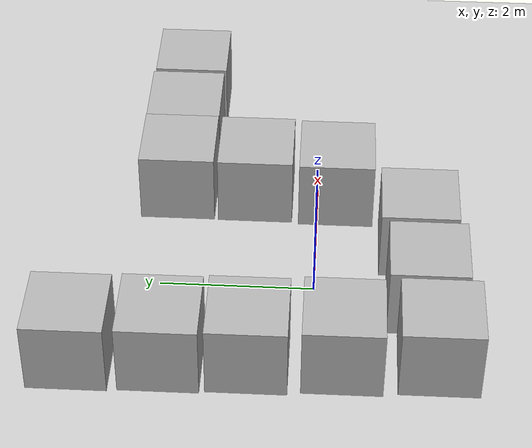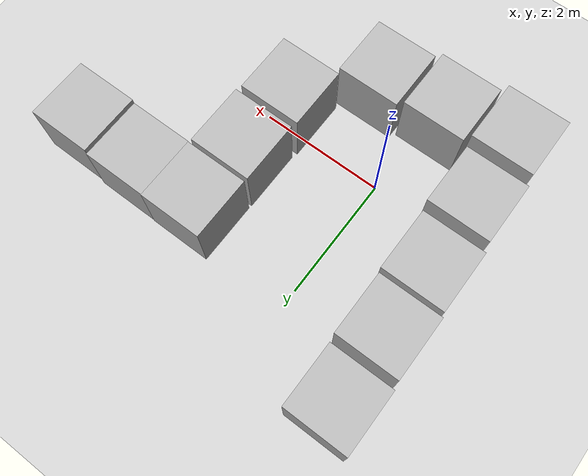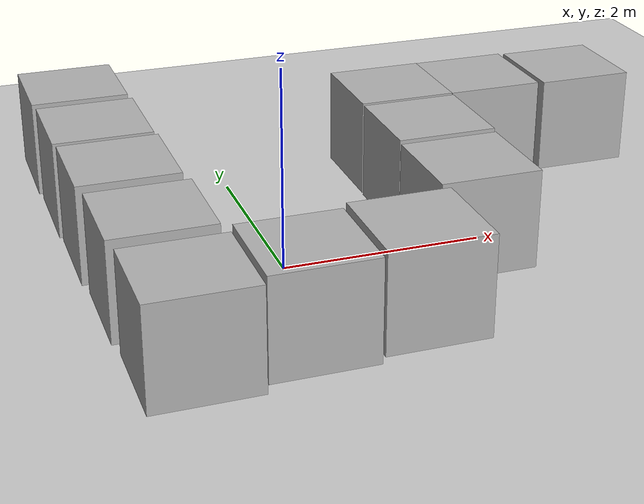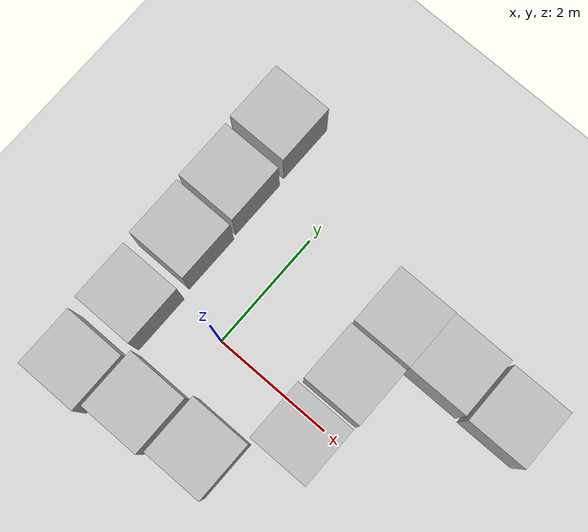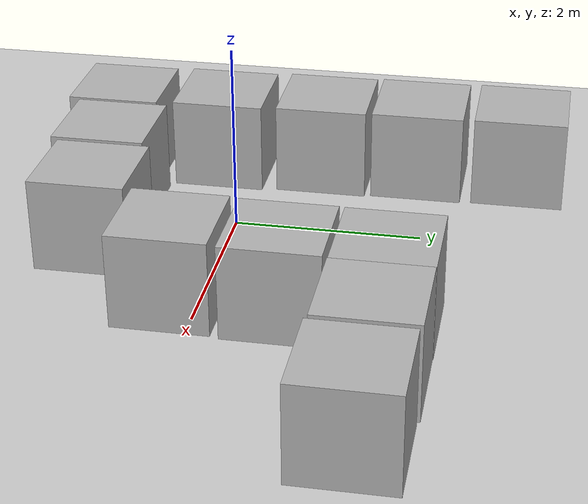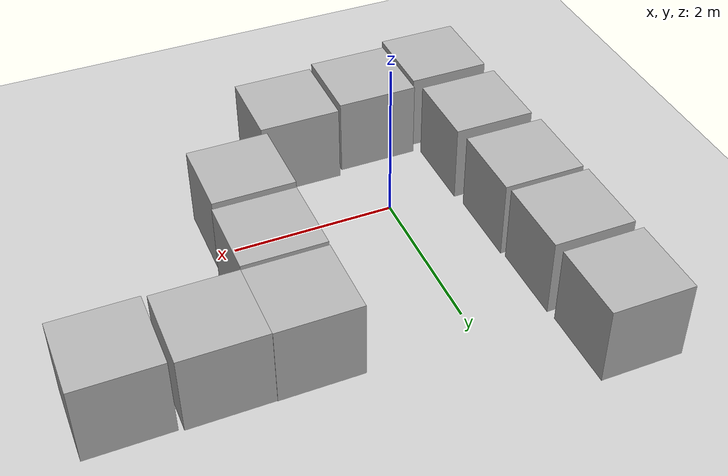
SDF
<sdf version='1.10'>
  <world name='empty'>
    <physics name='1ms' type='ignored'>
      <max_step_size>0.001</max_step_size>
      <real_time_factor>1</real_time_factor>
      <real_time_update_rate>1000</real_time_update_rate>
    </physics>
    <plugin name='gz::sim::systems::Physics' filename='gz-sim-physics-system'/>
    <plugin name='gz::sim::systems::UserCommands' filename='gz-sim-user-commands-system'/>
    <plugin name='gz::sim::systems::SceneBroadcaster' filename='gz-sim-scene-broadcaster-system'/>
    <plugin name='gz::sim::systems::Contact' filename='gz-sim-contact-system'/>
    <gravity>0 0 -9.8000000000000007</gravity>
    <magnetic_field>5.5644999999999998e-06 2.2875799999999999e-05 -4.2388400000000002e-05</magnetic_field>
    <atmosphere type='adiabatic'/>
    <scene>
      <ambient>0.400000006 0.400000006 0.400000006 1</ambient>
      <background>0.699999988 0.699999988 0.699999988 1</background>
      <shadows>true</shadows>
    </scene>
    <model name='ground_plane'>
      <static>true</static>
      <link name='link'>
        <collision name='collision'>
          <geometry>
            <plane>
              <normal>0 0 1</normal>
              <size>100 100</size>
            </plane>
          </geometry>
          <surface>
            <friction>
              <ode/>
            </friction>
            <bounce/>
            <contact/>
          </surface>
        </collision>
        <visual name='visual'>
          <geometry>
            <plane>
              <normal>0 0 1</normal>
              <size>100 100</size>
            </plane>
          </geometry>
          <material>
            <ambient>0.800000012 0.800000012 0.800000012 1</ambient>
            <diffuse>0.800000012 0.800000012 0.800000012 1</diffuse>
            <specular>0.800000012 0.800000012 0.800000012 1</specular>
          </material>
        </visual>
        <pose>0 0 0 0 0 0</pose>
        <inertial>
          <pose>0 0 0 0 0 0</pose>
          <mass>1</mass>
          <inertia>
            <ixx>1</ixx>
            <ixy>0</ixy>
            <ixz>0</ixz>
            <iyy>1</iyy>
            <iyz>0</iyz>
            <izz>1</izz>
          </inertia>
        </inertial>
        <enable_wind>false</enable_wind>
      </link>
      <pose>0 0 0 0 0 0</pose>
      <self_collide>false</self_collide>
    </model>

    <model name='box'>
      <pose>-1.4199172991033273 2.9624417713938458 0.49999999990199806 6.2287739151293738e-22 9.3279666454713669e-22 -3.6315533669320137e-22</pose>
      <link name='box_link'>
        <inertial>
          <inertia>
            <ixx>0.16666</ixx>
            <ixy>0</ixy>
            <ixz>0</ixz>
            <iyy>0.16666</iyy>
            <iyz>0</iyz>
            <izz>0.16666</izz>
          </inertia>
          <mass>1</mass>
          <pose>0 0 0 0 0 0</pose>
        </inertial>
        <collision name='box_collision'>
          <geometry>
            <box>
              <size>1 1 1</size>
            </box>
          </geometry>
          <surface>
            <friction>
              <ode/>
            </friction>
            <bounce/>
            <contact/>
          </surface>
        </collision>
        <visual name='box_visual'>
          <geometry>
            <box>
              <size>1 1 1</size>
            </box>
          </geometry>
          <material>
            <ambient>0.300000012 0.300000012 0.300000012 1</ambient>
            <diffuse>0.699999988 0.699999988 0.699999988 1</diffuse>
            <specular>1 1 1 1</specular>
          </material>
        </visual>
        <pose>0 0 0 0 0 0</pose>
        <enable_wind>false</enable_wind>
      </link>
      <static>false</static>
      <self_collide>false</self_collide>
    </model>
    <model name='box_0'>
      <pose>-1.3954971699104231 1.8411759138308825 0.49999999990199806 3.0311822190606552e-21 3.0334240186237451e-21 3.1588773509749865e-22</pose>
      <link name='box_link'>
        <inertial>
          <inertia>
            <ixx>0.16666</ixx>
            <ixy>0</ixy>
            <ixz>0</ixz>
            <iyy>0.16666</iyy>
            <iyz>0</iyz>
            <izz>0.16666</izz>
          </inertia>
          <mass>1</mass>
          <pose>0 0 0 0 0 0</pose>
        </inertial>
        <collision name='box_collision'>
          <geometry>
            <box>
              <size>1 1 1</size>
            </box>
          </geometry>
          <surface>
            <friction>
              <ode/>
            </friction>
            <bounce/>
            <contact/>
          </surface>
        </collision>
        <visual name='box_visual'>
          <geometry>
            <box>
              <size>1 1 1</size>
            </box>
          </geometry>
          <material>
            <ambient>0.300000012 0.300000012 0.300000012 1</ambient>
            <diffuse>0.699999988 0.699999988 0.699999988 1</diffuse>
            <specular>1 1 1 1</specular>
          </material>
        </visual>
        <pose>0 0 0 0 0 0</pose>
        <enable_wind>false</enable_wind>
      </link>
      <static>false</static>
      <self_collide>false</self_collide>
    </model>
    <model name='box_1'>
      <pose>-1.3694394904535407 0.77414551856460112 0.49999999990199806 6.2287739151293738e-22 9.3279666454713669e-22 -3.6315533669320137e-22</pose>
      <link name='box_link'>
        <inertial>
          <inertia>
            <ixx>0.16666</ixx>
            <ixy>0</ixy>
            <ixz>0</ixz>
            <iyy>0.16666</iyy>
            <iyz>0</iyz>
            <izz>0.16666</izz>
          </inertia>
          <mass>1</mass>
          <pose>0 0 0 0 0 0</pose>
        </inertial>
        <collision name='box_collision'>
          <geometry>
            <box>
              <size>1 1 1</size>
            </box>
          </geometry>
          <surface>
            <friction>
              <ode/>
            </friction>
            <bounce/>
            <contact/>
          </surface>
        </collision>
        <visual name='box_visual'>
          <geometry>
            <box>
              <size>1 1 1</size>
            </box>
          </geometry>
          <material>
            <ambient>0.300000012 0.300000012 0.300000012 1</ambient>
            <diffuse>0.699999988 0.699999988 0.699999988 1</diffuse>
            <specular>1 1 1 1</specular>
          </material>
        </visual>
        <pose>0 0 0 0 0 0</pose>
        <enable_wind>false</enable_wind>
      </link>
      <static>false</static>
      <self_collide>false</self_collide>
    </model>
    <model name='box_2'>
      <pose>-1.327746954532339 -0.38645944554479117 0.49999999990199806 6.2287739151293738e-22 9.3279666454713669e-22 -3.6315533669320137e-22</pose>
      <link name='box_link'>
        <inertial>
          <inertia>
            <ixx>0.16666</ixx>
            <ixy>0</ixy>
            <ixz>0</ixz>
            <iyy>0.16666</iyy>
            <iyz>0</iyz>
            <izz>0.16666</izz>
          </inertia>
          <mass>1</mass>
          <pose>0 0 0 0 0 0</pose>
        </inertial>
        <collision name='box_collision'>
          <geometry>
            <box>
              <size>1 1 1</size>
            </box>
          </geometry>
          <surface>
            <friction>
              <ode/>
            </friction>
            <bounce/>
            <contact/>
          </surface>
        </collision>
        <visual name='box_visual'>
          <geometry>
            <box>
              <size>1 1 1</size>
            </box>
          </geometry>
          <material>
            <ambient>0.300000012 0.300000012 0.300000012 1</ambient>
            <diffuse>0.699999988 0.699999988 0.699999988 1</diffuse>
            <specular>1 1 1 1</specular>
          </material>
        </visual>
        <pose>0 0 0 0 0 0</pose>
        <enable_wind>false</enable_wind>
      </link>
      <static>false</static>
      <self_collide>false</self_collide>
    </model>
    <model name='box_3'>
      <pose>-1.2863466139972171 -1.5664504239690018 0.49999999990199806 6.2287739151293738e-22 9.3279666454713669e-22 -3.6315533669320137e-22</pose>
      <link name='box_link'>
        <inertial>
          <inertia>
            <ixx>0.16666</ixx>
            <ixy>0</ixy>
            <ixz>0</ixz>
            <iyy>0.16666</iyy>
            <iyz>0</iyz>
            <izz>0.16666</izz>
          </inertia>
          <mass>1</mass>
          <pose>0 0 0 0 0 0</pose>
        </inertial>
        <collision name='box_collision'>
          <geometry>
            <box>
              <size>1 1 1</size>
            </box>
          </geometry>
          <surface>
            <friction>
              <ode/>
            </friction>
            <bounce/>
            <contact/>
          </surface>
        </collision>
        <visual name='box_visual'>
          <geometry>
            <box>
              <size>1 1 1</size>
            </box>
          </geometry>
          <material>
            <ambient>0.300000012 0.300000012 0.300000012 1</ambient>
            <diffuse>0.699999988 0.699999988 0.699999988 1</diffuse>
            <specular>1 1 1 1</specular>
          </material>
        </visual>
        <pose>0 0 0 0 0 0</pose>
        <enable_wind>false</enable_wind>
      </link>
      <static>false</static>
      <self_collide>false</self_collide>
    </model>
    <model name='box_4'>
      <pose>-0.23928754447726752 -1.4329954207501654 0.49999999990199806 6.2287739151293738e-22 9.3279666454713669e-22 -3.6315533669320137e-22</pose>
      <link name='box_link'>
        <inertial>
          <inertia>
            <ixx>0.16666</ixx>
            <ixy>0</ixy>
            <ixz>0</ixz>
            <iyy>0.16666</iyy>
            <iyz>0</iyz>
            <izz>0.16666</izz>
          </inertia>
          <mass>1</mass>
          <pose>0 0 0 0 0 0</pose>
        </inertial>
        <collision name='box_collision'>
          <geometry>
            <box>
              <size>1 1 1</size>
            </box>
          </geometry>
          <surface>
            <friction>
              <ode/>
            </friction>
            <bounce/>
            <contact/>
          </surface>
        </collision>
        <visual name='box_visual'>
          <geometry>
            <box>
              <size>1 1 1</size>
            </box>
          </geometry>
          <material>
            <ambient>0.300000012 0.300000012 0.300000012 1</ambient>
            <diffuse>0.699999988 0.699999988 0.699999988 1</diffuse>
            <specular>1 1 1 1</specular>
          </material>
        </visual>
        <pose>0 0 0 0 0 0</pose>
        <enable_wind>false</enable_wind>
      </link>
      <static>false</static>
      <self_collide>false</self_collide>
    </model>
    <model name='box_5'>
      <pose>0.82204059738681146 -1.3354860004371107 0.49999999990199806 6.2287739151293738e-22 9.3279666454713669e-22 -3.6315533669320137e-22</pose>
      <link name='box_link'>
        <inertial>
          <inertia>
            <ixx>0.16666</ixx>
            <ixy>0</ixy>
            <ixz>0</ixz>
            <iyy>0.16666</iyy>
            <iyz>0</iyz>
            <izz>0.16666</izz>
          </inertia>
          <mass>1</mass>
          <pose>0 0 0 0 0 0</pose>
        </inertial>
        <collision name='box_collision'>
          <geometry>
            <box>
              <size>1 1 1</size>
            </box>
          </geometry>
          <surface>
            <friction>
              <ode/>
            </friction>
            <bounce/>
            <contact/>
          </surface>
        </collision>
        <visual name='box_visual'>
          <geometry>
            <box>
              <size>1 1 1</size>
            </box>
          </geometry>
          <material>
            <ambient>0.300000012 0.300000012 0.300000012 1</ambient>
            <diffuse>0.699999988 0.699999988 0.699999988 1</diffuse>
            <specular>1 1 1 1</specular>
          </material>
        </visual>
        <pose>0 0 0 0 0 0</pose>
        <enable_wind>false</enable_wind>
      </link>
      <static>false</static>
      <self_collide>false</self_collide>
    </model>
    <model name='box_6'>
      <pose>1.7734679776881273 -0.25239669794122199 0.49999999990199806 -1.9249943472110903e-21 -8.8168099312135399e-23 5.9539359531013704e-24</pose>
      <link name='box_link'>
        <inertial>
          <inertia>
            <ixx>0.16666</ixx>
            <ixy>0</ixy>
            <ixz>0</ixz>
            <iyy>0.16666</iyy>
            <iyz>0</iyz>
            <izz>0.16666</izz>
          </inertia>
          <mass>1</mass>
          <pose>0 0 0 0 0 0</pose>
        </inertial>
        <collision name='box_collision'>
          <geometry>
            <box>
              <size>1 1 1</size>
            </box>
          </geometry>
          <surface>
            <friction>
              <ode/>
            </friction>
            <bounce/>
            <contact/>
          </surface>
        </collision>
        <visual name='box_visual'>
          <geometry>
            <box>
              <size>1 1 1</size>
            </box>
          </geometry>
          <material>
            <ambient>0.300000012 0.300000012 0.300000012 1</ambient>
            <diffuse>0.699999988 0.699999988 0.699999988 1</diffuse>
            <specular>1 1 1 1</specular>
          </material>
        </visual>
        <pose>0 0 0 0 0 0</pose>
        <enable_wind>false</enable_wind>
      </link>
      <static>false</static>
      <self_collide>false</self_collide>
    </model>
    <model name='box_7'>
      <pose>1.8024209706840237 0.83679081617753848 0.49999999990199806 -2.9047219709942618e-22 -1.9364442580290553e-22 -2.367744738756233e-22</pose>
      <link name='box_link'>
        <inertial>
          <inertia>
            <ixx>0.16666</ixx>
            <ixy>0</ixy>
            <ixz>0</ixz>
            <iyy>0.16666</iyy>
            <iyz>0</iyz>
            <izz>0.16666</izz>
          </inertia>
          <mass>1</mass>
          <pose>0 0 0 0 0 0</pose>
        </inertial>
        <collision name='box_collision'>
          <geometry>
            <box>
              <size>1 1 1</size>
            </box>
          </geometry>
          <surface>
            <friction>
              <ode/>
            </friction>
            <bounce/>
            <contact/>
          </surface>
        </collision>
        <visual name='box_visual'>
          <geometry>
            <box>
              <size>1 1 1</size>
            </box>
          </geometry>
          <material>
            <ambient>0.300000012 0.300000012 0.300000012 1</ambient>
            <diffuse>0.699999988 0.699999988 0.699999988 1</diffuse>
            <specular>1 1 1 1</specular>
          </material>
        </visual>
        <pose>0 0 0 0 0 0</pose>
        <enable_wind>false</enable_wind>
      </link>
      <static>false</static>
      <self_collide>false</self_collide>
    </model>
    <model name='box_8'>
      <pose>1.811066338223781 1.8890408296131775 0.49999999135047735 5.6781332363139774e-09 -2.4969689685750312e-08 -4.7769429373221302e-07</pose>
      <link name='box_link'>
        <inertial>
          <inertia>
            <ixx>0.16666</ixx>
            <ixy>0</ixy>
            <ixz>0</ixz>
            <iyy>0.16666</iyy>
            <iyz>0</iyz>
            <izz>0.16666</izz>
          </inertia>
          <mass>1</mass>
          <pose>0 0 0 0 0 0</pose>
        </inertial>
        <collision name='box_collision'>
          <geometry>
            <box>
              <size>1 1 1</size>
            </box>
          </geometry>
          <surface>
            <friction>
              <ode/>
            </friction>
            <bounce/>
            <contact/>
          </surface>
        </collision>
        <visual name='box_visual'>
          <geometry>
            <box>
              <size>1 1 1</size>
            </box>
          </geometry>
          <material>
            <ambient>0.300000012 0.300000012 0.300000012 1</ambient>
            <diffuse>0.699999988 0.699999988 0.699999988 1</diffuse>
            <specular>1 1 1 1</specular>
          </material>
        </visual>
        <pose>0 0 0 0 0 0</pose>
        <enable_wind>false</enable_wind>
      </link>
      <static>false</static>
      <self_collide>false</self_collide>
    </model>
    <model name='box_9'>
      <pose>2.8110656416358304 1.8829777881153333 0.49999999043368004 9.2001615716514652e-10 1.0906166869195071e-08 -4.4111493468061666e-07</pose>
      <link name='box_link'>
        <inertial>
          <inertia>
            <ixx>0.16666</ixx>
            <ixy>0</ixy>
            <ixz>0</ixz>
            <iyy>0.16666</iyy>
            <iyz>0</iyz>
            <izz>0.16666</izz>
          </inertia>
          <mass>1</mass>
          <pose>0 0 0 0 0 0</pose>
        </inertial>
        <collision name='box_collision'>
          <geometry>
            <box>
              <size>1 1 1</size>
            </box>
          </geometry>
          <surface>
            <friction>
              <ode/>
            </friction>
            <bounce/>
            <contact/>
          </surface>
        </collision>
        <visual name='box_visual'>
          <geometry>
            <box>
              <size>1 1 1</size>
            </box>
          </geometry>
          <material>
            <ambient>0.300000012 0.300000012 0.300000012 1</ambient>
            <diffuse>0.699999988 0.699999988 0.699999988 1</diffuse>
            <specular>1 1 1 1</specular>
          </material>
        </visual>
        <pose>0 0 0 0 0 0</pose>
        <enable_wind>false</enable_wind>
      </link>
      <static>false</static>
      <self_collide>false</self_collide>
    </model>
    <model name='box_10'>
      <pose>3.8665754333479136 1.8564543816990073 0.49999999990199806 8.9355484461528202e-22 5.3504541451447377e-22 3.4621580405642236e-22</pose>
      <link name='box_link'>
        <inertial>
          <inertia>
            <ixx>0.16666</ixx>
            <ixy>0</ixy>
            <ixz>0</ixz>
            <iyy>0.16666</iyy>
            <iyz>0</iyz>
            <izz>0.16666</izz>
          </inertia>
          <mass>1</mass>
          <pose>0 0 0 0 0 0</pose>
        </inertial>
        <collision name='box_collision'>
          <geometry>
            <box>
              <size>1 1 1</size>
            </box>
          </geometry>
          <surface>
            <friction>
              <ode/>
            </friction>
            <bounce/>
            <contact/>
          </surface>
        </collision>
        <visual name='box_visual'>
          <geometry>
            <box>
              <size>1 1 1</size>
            </box>
          </geometry>
          <material>
            <ambient>0.300000012 0.300000012 0.300000012 1</ambient>
            <diffuse>0.699999988 0.699999988 0.699999988 1</diffuse>
            <specular>1 1 1 1</specular>
          </material>
        </visual>
        <pose>0 0 0 0 0 0</pose>
        <enable_wind>false</enable_wind>
      </link>
      <static>false</static>
      <self_collide>false</self_collide>
    </model>
    <light name='sun' type='directional'>
      <pose>0 0 10 0 0 0</pose>
      <cast_shadows>true</cast_shadows>
      <intensity>1</intensity>
      <direction>-0.5 0.10000000000000001 -0.90000000000000002</direction>
      <diffuse>0.800000012 0.800000012 0.800000012 1</diffuse>
      <specular>0.200000003 0.200000003 0.200000003 1</specular>
      <attenuation>
        <range>1000</range>
        <linear>0.01</linear>
        <constant>0.90000000000000002</constant>
        <quadratic>0.001</quadratic>
      </attenuation>
      <spot>
        <inner_angle>0</inner_angle>
        <outer_angle>0</outer_angle>
        <falloff>0</falloff>
      </spot>
    </light>
  </world>
</sdf>
